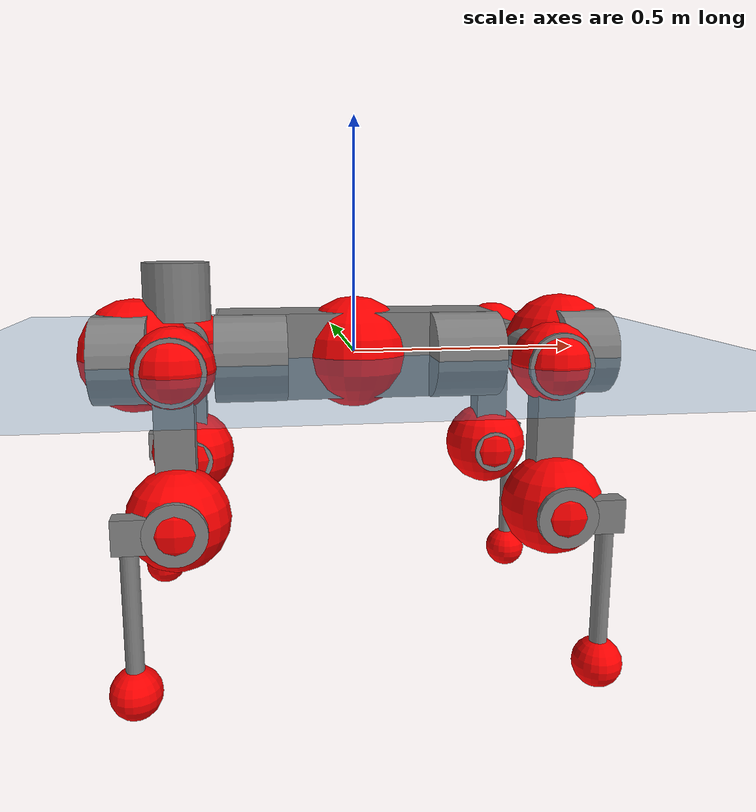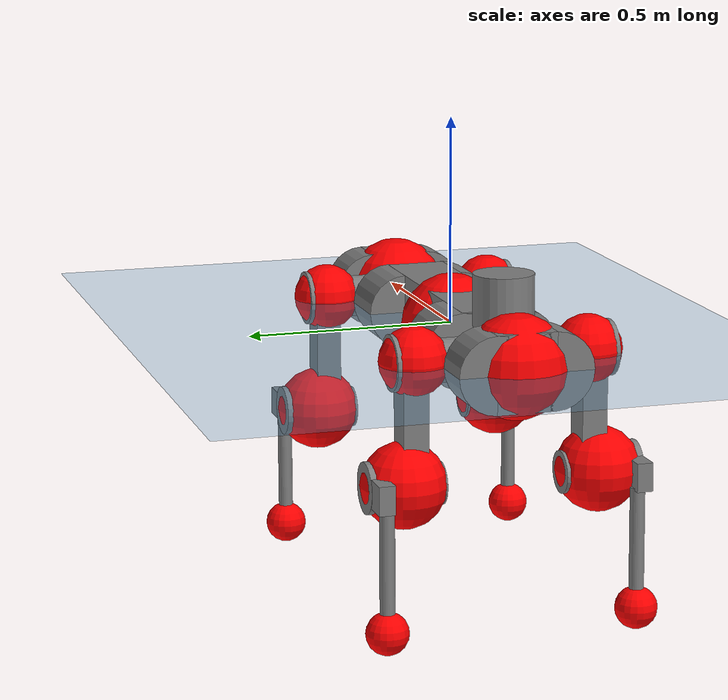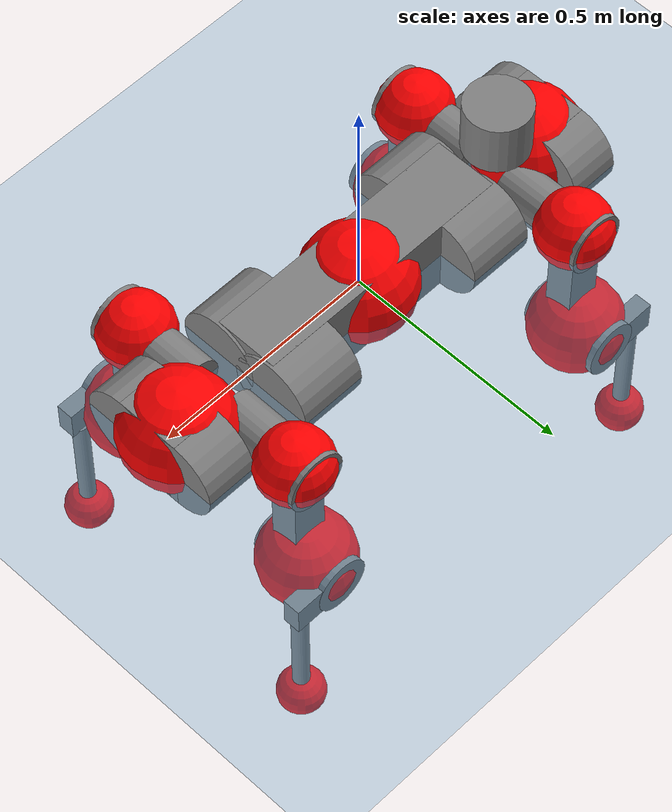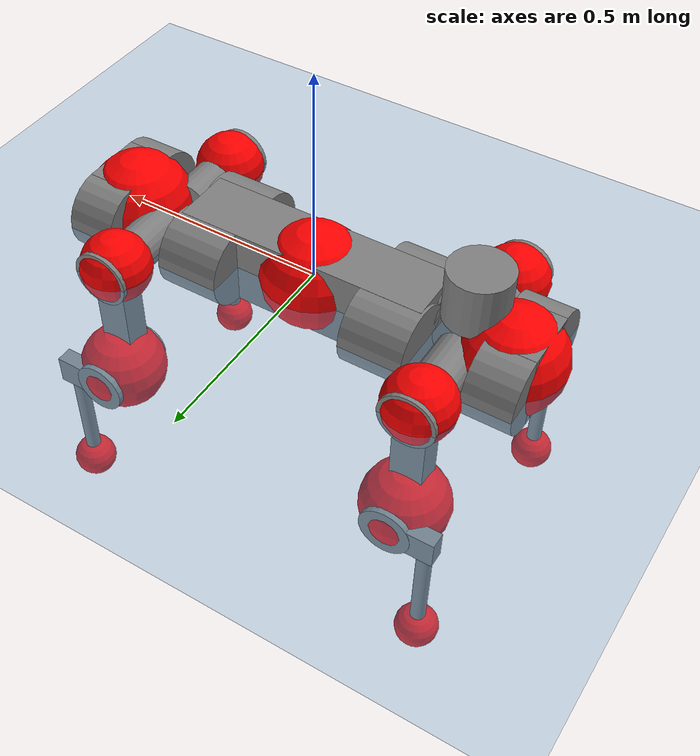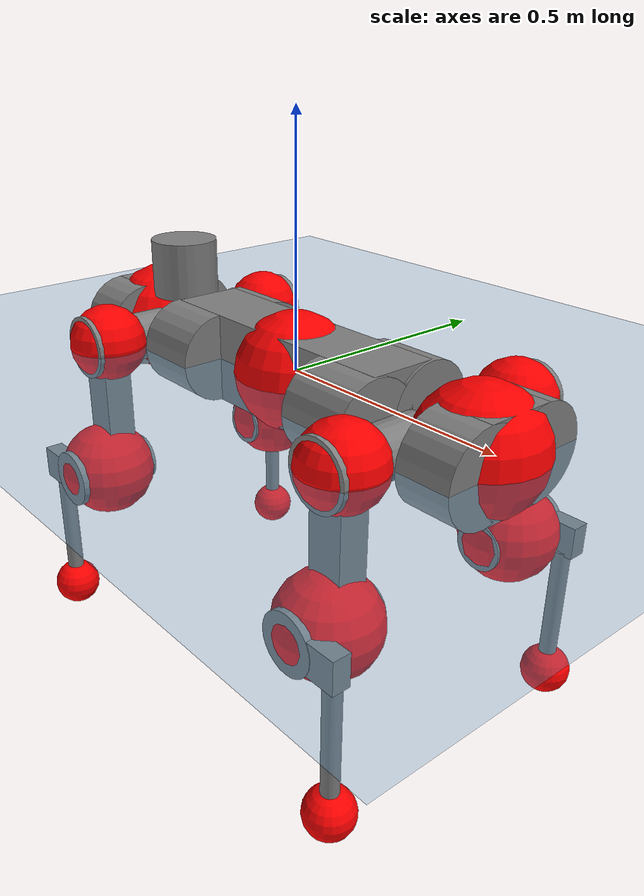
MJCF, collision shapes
<mujoco model="anymal_c">
  <compiler angle="radian" assetdir="assets" balanceinertia="true" inertiafromgeom="false"/>

  <option timestep="0.005" density="1.2" viscosity="2e-05"/>

  <size nkey="1"/>

  <visual>
    <quality shadowsize="8192"/>
    <map shadowclip="0.5"/>
  </visual>

  <default>
    <default class="/">
      <material specular="0" shininess="0.25"/>
      <geom contype="0" conaffinity="0" group="1" solref="-1000 -80"/>
      <site size="0.01 0.005 0.005" group="5"/>
      <general forcelimited="true" forcerange="-80 80" biastype="affine" gainprm="80" biasprm="0 -80 -2"/>
      <default class="anymal_c">
        <joint armature="0.01" damping="0.01" frictionloss="0.1"/>
        <default class="visual">
          <geom type="mesh" group="2"/>
          <default class="visual_zflip"/>
        </default>
        <default class="collision">
          <geom type="cylinder" group="3"/>
          <default class="foot">
            <geom size="0.03 0 0" type="sphere" condim="6" priority="1" friction="0.8 0.02 0.01" solimp="0.015 1 0.03"/>
          </default>
        </default>
      </default>
      <default class="reward_collision_sphere">
        <geom group="5" rgba="1 0 0 1"/>
      </default>
    </default>
  </default>

  <asset>
    <texture type="skybox" colorspace="auto" name="//unnamed_texture_0" builtin="gradient" rgb1="0.95 0.95 0.95" rgb2="0.95 0.95 0.95" width="100" height="600"/>
    <texture type="2d" colorspace="auto" name="texplane" builtin="checker" rgb1="0.345 0.575 0.748" rgb2="0.345 0.575 0.748" markrgb="1 1 1" width="512" height="512"/>
    <texture type="2d" colorspace="linear" name="base" file="base.png"/>
    <texture type="2d" colorspace="linear" name="top_shell" file="top_shell.png"/>
    <texture type="2d" colorspace="linear" name="bottom_shell" file="bottom_shell.png"/>
    <texture type="2d" colorspace="linear" name="remote" file="remote.png"/>
    <texture type="2d" colorspace="linear" name="hatch" file="hatch.png"/>
    <texture type="2d" colorspace="linear" name="handle" file="handle.png"/>
    <texture type="2d" colorspace="linear" name="face" file="face.png"/>
    <texture type="2d" colorspace="linear" name="battery" file="battery.png"/>
    <texture type="2d" colorspace="linear" name="lidar_cage" file="lidar_cage.png"/>
    <texture type="2d" colorspace="linear" name="depth_camera" file="depth_camera.png"/>
    <texture type="2d" colorspace="linear" name="wide_angle_camera" file="wide_angle_camera.png"/>
    <texture type="2d" colorspace="linear" name="lidar" file="lidar.png"/>
    <texture type="2d" colorspace="linear" name="drive" file="drive.png"/>
    <texture type="2d" colorspace="linear" name="hip_l" file="hip_l.png"/>
    <texture type="2d" colorspace="linear" name="shank_l" file="shank_l.png"/>
    <texture type="2d" colorspace="linear" name="foot" file="foot.png"/>
    <texture type="2d" colorspace="linear" name="thigh" file="thigh.png"/>
    <texture type="2d" colorspace="linear" name="shank_r" file="shank_r.png"/>
    <texture type="2d" colorspace="linear" name="hip_r" file="hip_r.png"/>
    <material name="MatPlane" class="/" texture="texplane" texuniform="true" texrepeat="2 2" specular="0.9" shininess="0.5"/>
    <material name="black_plastic" class="/" rgba="0.007 0.007 0.007 1"/>
    <material name="green" class="/" rgba="0.052 0.178 0.033 1"/>
    <material name="red" class="/" rgba="0.178 0.006 0.005 1"/>
    <material name="yellow" class="/" rgba="0.178 0.119 0.006 1"/>
    <material name="lwl" class="/" rgba="0.8 0.8 0.8 1"/>
    <material name="base" class="/" texture="base"/>
    <material name="top_shell" class="/" texture="top_shell"/>
    <material name="bottom_shell" class="/" texture="bottom_shell"/>
    <material name="hip_l" class="/" texture="hip_l"/>
    <material name="thigh" class="/" texture="thigh"/>
    <material name="shank_l" class="/" texture="shank_l"/>
    <material name="foot" class="/" texture="foot"/>
    <material name="hip_r" class="/" texture="hip_r"/>
    <material name="shank" class="/" texture="shank_r"/>
    <material name="hatch" class="/" texture="hatch"/>
    <material name="remote" class="/" texture="remote"/>
    <material name="handle" class="/" texture="handle"/>
    <material name="face" class="/" texture="face"/>
    <material name="depth_camera" class="/" texture="depth_camera"/>
    <material name="wide_angle_camera" class="/" texture="wide_angle_camera"/>
    <material name="battery" class="/" texture="battery"/>
    <material name="lidar_cage" class="/" texture="lidar_cage"/>
    <material name="lidar" class="/" texture="lidar"/>
    <material name="drive" class="/" texture="drive"/>
    <mesh name="base_0" class="/" file="base_0.obj"/>
    <mesh name="base_1" class="/" file="base_1.obj"/>
    <mesh name="base_2" class="/" file="base_2.obj"/>
    <mesh name="base_3" class="/" file="base_3.obj"/>
    <mesh name="base_4" class="/" file="base_4.obj"/>
    <mesh name="base_5" class="/" file="base_5.obj"/>
    <mesh name="top_shell" class="/" file="top_shell.obj"/>
    <mesh name="bottom_shell" class="/" file="bottom_shell.obj"/>
    <mesh name="remote" class="/" file="remote.obj"/>
    <mesh name="handle" class="/" file="handle.obj"/>
    <mesh name="face" class="/" file="face.obj"/>
    <mesh name="wide_angle_camera" class="/" file="wide_angle_camera.obj"/>
    <mesh name="depth_camera" class="/" file="depth_camera.obj"/>
    <mesh name="battery" class="/" file="battery.obj"/>
    <mesh name="lidar_cage" class="/" file="lidar_cage.obj"/>
    <mesh name="lidar" class="/" file="lidar.obj"/>
    <mesh name="drive" class="/" file="drive.obj"/>
    <mesh name="hip_l" class="/" file="hip_l.obj"/>
    <mesh name="thigh" class="/" file="thigh.obj"/>
    <mesh name="shank_l" class="/" file="shank_l.obj"/>
    <mesh name="foot" class="/" file="foot.obj"/>
    <mesh name="hip_r" class="/" file="hip_r.obj"/>
    <mesh name="hatch" class="/" file="hatch.obj"/>
    <mesh name="shank_r" class="/" file="shank_r.obj"/>
  </asset>

  <worldbody>
    <geom name="floor" class="/" size="100 100 0.125" type="plane" group="0" material="MatPlane"/>
    <light name="toplight_shadow" class="/" pos="0 0 5" dir="0.0990148 0.0990148 -0.990148" type="directional" ambient="0.04 0.04 0.04" diffuse="0.55 0.55 0.55" specular="0.12 0.12 0.12"/>
    <light name="toplight_fill" class="/" pos="0 0 5" dir="0.0990148 0.0990148 -0.990148" type="directional" castshadow="false" ambient="0.04 0.04 0.04" diffuse="0.3 0.3 0.3" specular="0.08 0.08 0.08"/>
    <body name="trunk" childclass="anymal_c" pos="-0.000442841 -0.00275119 -0.000560648" quat="0.999999 -0.00123979 0.000149449 0.00058774">
      <inertial pos="-0.000111402 -0.00187318 0.0526426" quat="0.492079 0.496675 0.506887 0.50422" mass="20.3618" diaginertia="0.764221 0.573213 0.24269"/>
      <joint name="//unnamed_joint_0" type="free" armature="0" damping="0" frictionloss="0"/>
      <geom name="//unnamed_geom_1" class="visual" material="green" mesh="base_0"/>
      <geom name="//unnamed_geom_2" class="visual" material="yellow" mesh="base_1"/>
      <geom name="//unnamed_geom_3" class="visual" material="red" mesh="base_2"/>
      <geom name="//unnamed_geom_4" class="visual" material="black_plastic" mesh="base_3"/>
      <geom name="//unnamed_geom_5" class="visual" material="lwl" mesh="base_4"/>
      <geom name="//unnamed_geom_6" class="visual" material="base" mesh="base_5"/>
      <geom name="trunk_1" class="collision" size="0.294697 0.0711337 0.0914576" type="box"/>
      <geom name="trunk_2" class="collision" size="0.0914576 0.0736742" pos="0.227372 0.0688474 0" quat="0.707107 0 0.707107 0"/>
      <geom name="trunk_3" class="collision" size="0.0914576 0.0736742" pos="-0.227372 0.0688474 0" quat="0.707107 0 0.707107 0"/>
      <geom name="trunk_4" class="collision" size="0.0914576 0.0736742" pos="0.227372 -0.0688474 0" quat="0.707107 0 0.707107 0"/>
      <geom name="trunk_5" class="collision" size="0.0914576 0.0736742" pos="-0.227372 -0.0688474 0" quat="0.707107 0 0.707107 0"/>
      <geom name="//unnamed_geom_12" class="visual" material="top_shell" mesh="top_shell"/>
      <geom name="//unnamed_geom_13" class="visual" material="bottom_shell" mesh="bottom_shell"/>
      <geom name="//unnamed_geom_14" class="visual" material="remote" mesh="remote"/>
      <geom name="//unnamed_geom_15" class="visual" material="handle" mesh="handle"/>
      <geom name="//unnamed_geom_16" class="visual" pos="0.433314 0 0" quat="1 0 0 0" material="face" mesh="face"/>
      <geom name="trunk_6" class="collision" size="0.0558908 0.0711337 0.0914576" pos="0.49081 0 0" type="box"/>
      <geom name="//unnamed_geom_18" class="collision" size="0.0914576 0.0558908" pos="0.49081 0.0688474 0" quat="0.707107 0 0.707107 0"/>
      <geom name="//unnamed_geom_19" class="collision" size="0.0914576 0.0558908" pos="0.49081 -0.0688474 0" quat="0.707107 0 0.707107 0"/>
      <geom name="//unnamed_geom_20" class="visual" pos="0.482603 0 -0.0295786" quat="0.965926 0 0.258819 0" material="depth_camera" mesh="depth_camera"/>
      <geom name="//unnamed_geom_21" class="visual" pos="0.536284 0 0.0152644" material="wide_angle_camera" mesh="wide_angle_camera"/>
      <geom name="//unnamed_geom_22" class="visual_zflip" pos="-0.433314 0 0" quat="0 0 0 1" material="face" mesh="face"/>
      <geom name="trunk_7" class="collision" size="0.0558908 0.0711337 0.0914576" pos="-0.49081 0 0" quat="0 0 0 1" type="box"/>
      <geom name="//unnamed_geom_24" class="collision" size="0.0914576 0.0558908" pos="-0.49081 -0.0688474 0" quat="0 -0.707107 0 0.707107"/>
      <geom name="//unnamed_geom_25" class="collision" size="0.0914576 0.0558908" pos="-0.49081 0.0688474 0" quat="0 -0.707107 0 0.707107"/>
      <geom name="//unnamed_geom_26" class="visual" pos="-0.482603 0 -0.0295786" quat="0 -0.258819 0 0.965926" material="depth_camera" mesh="depth_camera"/>
      <geom name="//unnamed_geom_27" class="visual_zflip" pos="-0.536284 0 0.0152644" quat="0 0 0 1" material="wide_angle_camera" mesh="wide_angle_camera"/>
      <geom name="//unnamed_geom_28" class="visual" material="battery" mesh="battery"/>
      <geom name="//unnamed_geom_29" class="visual" pos="0 0.0743884 0.0298167" quat="0.683013 -0.183013 0.183013 0.683013" material="depth_camera" mesh="depth_camera"/>
      <geom name="//unnamed_geom_30" class="visual" pos="0 -0.0743884 0.0298167" quat="0.683013 0.183013 0.183013 -0.683013" material="depth_camera" mesh="depth_camera"/>
      <geom name="//unnamed_geom_31" class="visual" pos="-0.380522 0 0.0749452" quat="1 0 0 0" material="lidar_cage" mesh="lidar_cage"/>
      <geom name="trunk_8" class="collision" size="0.0711337 0.0609717" pos="-0.380522 0 0.136125"/>
      <geom name="//unnamed_geom_33" class="visual" pos="-0.380522 -2.43007e-05 0.144996" quat="0.707107 0 0 -0.707107" material="lidar" mesh="lidar"/>
      <geom name="//unnamed_geom_34" class="visual" pos="0.313512 0.1023 -6.23207e-10" quat="0.258819 0.965926 0 0" material="drive" mesh="drive"/>
      <geom name="//unnamed_geom_35" class="visual" pos="0.313512 -0.1023 6.23207e-10" quat="0.258819 -0.965926 0 0" material="drive" mesh="drive"/>
      <geom name="//unnamed_geom_36" class="visual" pos="-0.313512 0.1023 6.23207e-10" quat="0 0 0.965926 -0.258819" material="drive" mesh="drive"/>
      <geom name="//unnamed_geom_37" class="visual" pos="-0.313512 -0.1023 -6.23207e-10" quat="0 0 -0.965926 -0.258819" material="drive" mesh="drive"/>
      <geom name="//unnamed_geom_38" class="visual" pos="0.121265 0 0.0744354" quat="1 0 0 0" material="hatch" mesh="hatch"/>
      <geom name="//unnamed_geom_39" class="reward_collision_sphere" size="0.121943"/>
      <geom name="//unnamed_geom_40" class="reward_collision_sphere" size="0.121943" pos="0.470425 0 0"/>
      <geom name="//unnamed_geom_41" class="reward_collision_sphere" size="0.121943" pos="-0.470425 0 0"/>
      <site name="imu" pos="0.265265 0.00516523 0.044218" size="0.010162"/>
      <camera name="track" pos="0 -1.96707 0" quat="0.707107 0.707107 0 0" mode="trackcom"/>
      <camera name="ego_camera" pos="0.470425 0 -0.0407865" quat="-0.5 -0.5 0.5 0.5"/>
      <body name="LF_HIP" pos="0.312666 0.102688 0.001034" quat="0.258565 0.965994 -0.000381283 7.01458e-06">
        <inertial pos="0.0591494 -0.0175663 -0.00804883" quat="-0.132243 0.706111 -0.13754 0.681911" mass="2.90429" diaginertia="0.00733074 0.00439115 0.00362217"/>
        <joint name="LF_HAA" pos="0 0 0" axis="0.999958 0.00732814 -0.0055932" stiffness="0.00627303" range="-0.763105 0.504966" armature="0.0103099" damping="0.0081053" frictionloss="0.0988245"/>
        <geom name="//unnamed_geom_42" class="visual" pos="0 -3.66604e-05 6.02145e-06" quat="0.258819 -0.965926 0 0" material="hip_l" mesh="hip_l"/>
        <geom name="//unnamed_geom_43" class="visual" pos="0.0626188 -0.0750744 -0.0436115" quat="0.183013 -0.683013 0.683013 0.183013" material="drive" mesh="drive"/>
        <geom name="//unnamed_geom_44" class="collision" size="0.0508098 0.0711337" pos="0.0626188 -0.0117629 -0.00704077" quat="-0.353553 -0.612372 0.612372 -0.353553"/>
        <body name="LF_THIGH" pos="0.0656462 -0.0694138 -0.0420735" quat="0.183635 -0.683083 0.682664 0.183428">
          <inertial pos="0.0318952 0.00176823 -0.249565" quat="0.993321 -0.0110412 -0.0818803 0.0805386" mass="3.33442" diaginertia="0.0367956 0.0283797 0.00462998"/>
          <joint name="LF_HFE" pos="0 0 0" axis="0.999896 0.0132759 0.00556505" stiffness="0.00909146" range="-3.20011 3.09274" armature="0.0110561" damping="0.00238709" frictionloss="0.0895216"/>
          <geom name="//unnamed_geom_45" class="visual" pos="0.00123065 1.93921e-06 0" quat="0.707107 0 0 -0.707107" material="thigh" mesh="thigh"/>
          <geom name="//unnamed_geom_46" class="collision" size="0.0660527 0.0406478" pos="0.0418155 0 0" quat="0.5 0.5 -0.5 -0.5"/>
          <geom name="//unnamed_geom_47" class="collision" size="0.0381073 0.0304859 0.143603" pos="0.0313617 0 -0.144093" quat="0.707107 0 0 -0.707107" type="box"/>
          <geom name="//unnamed_geom_48" class="visual" pos="0.104852 0 -0.290604" quat="1 0 0 0" material="drive" mesh="drive"/>
          <geom name="//unnamed_geom_49" class="collision" size="0.0508098 0.0711337" pos="0.0316753 0 -0.290604" quat="0.707107 0 0.707107 0"/>
          <geom name="//unnamed_geom_50" class="reward_collision_sphere" size="0.0812956" pos="0.0261347 0 0"/>
          <body name="LF_SHANK" pos="0.104392 -0.000592449 -0.288737" quat="1 2.8804e-05 0.000196919 0.000509014">
            <inertial pos="0.00316295 -0.0628194 -0.0850669" quat="0.992413 -0.119428 -0.000441573 -0.0291932" mass="0.603483" diaginertia="0.0122301 0.00845802 0.00120803"/>
            <joint name="LF_KFE" pos="0 0 0" axis="0.999997 -0.00067774 0.00253224" stiffness="0.00624891" range="-3.1057 3.19595" armature="0.00888145" damping="0" frictionloss="0.105355"/>
            <geom name="//unnamed_geom_51" class="visual" pos="0.000401287 0.00213968 0" quat="0.707107 0 0 -0.707107" material="shank_l" mesh="shank_l"/>
            <geom name="LF_kfe_act" class="collision" size="0.0609717 0.0203239" pos="0.0209078 0 0" quat="0.5 0.5 -0.5 -0.5"/>
            <geom name="//unnamed_geom_53" class="collision" size="0.0584302 0.0342966 0.0193077" pos="0.0209078 -0.0565523 0" quat="0.5 0.5 -0.5 -0.5" type="box"/>
            <geom name="//unnamed_geom_54" class="visual" pos="0.0136422 -0.0858124 -0.344615" quat="0.382683 0 0 -0.92388" material="foot" mesh="foot"/>
            <geom name="LF_calf" class="collision" size="0.0177834 0.14354" pos="0.0136423 -0.0865019 -0.172308" quat="0.707107 0 0 -0.707107"/>
            <geom name="LF_foot" class="foot" size="0.0292487" pos="0.0136423 -0.0865019 -0.321673" quat="0.707107 0 0 -0.707107"/>
            <geom name="//unnamed_geom_57" class="reward_collision_sphere" size="0.10162" pos="-0.0522694 0 0"/>
            <geom name="//unnamed_geom_58" class="reward_collision_sphere" size="0.0508098" pos="0.0136423 -0.0865019 -0.321673"/>
            <site name="LF_foot" class="foot" pos="0.0136423 -0.0865019 -0.321673" quat="0.707107 0 0 -0.707107" size="0.010162"/>
          </body>
        </body>
      </body>
      <body name="RF_HIP" pos="0.311965 -0.104801 -0.000334218" quat="0.258843 -0.96592 -2.40155e-05 -0.0001187">
        <inertial pos="0.0603978 0.017016 -0.0102076" quat="0.146212 0.681873 0.126926 0.70538" mass="2.88515" diaginertia="0.00708992 0.00453361 0.00368657"/>
        <joint name="RF_HAA" pos="0 0 0" axis="0.999899 0.00301352 0.0138803" range="-0.510925 0.775031" armature="0.00925642" damping="0.0024567" frictionloss="0.103064"/>
        <geom name="//unnamed_geom_59" class="visual" pos="0 3.66602e-05 6.02143e-06" quat="0.258819 0.965926 0 0" material="hip_r" mesh="hip_r"/>
        <geom name="//unnamed_geom_60" class="visual" pos="0.0626188 0.0750744 -0.0436115" quat="0.183013 0.683013 0.683013 -0.183013" material="drive" mesh="drive"/>
        <geom name="//unnamed_geom_61" class="collision" size="0.0508098 0.0711337" pos="0.0626188 0.0117629 -0.00704077" quat="-0.353553 0.612372 0.612372 0.353553"/>
        <body name="RF_THIGH" pos="0.0615312 0.0712023 -0.0443401" quat="0.182901 0.682964 0.683113 -0.182932">
          <inertial pos="0.034468 -0.00280595 -0.248109" quat="0.992316 -0.0035635 -0.0853237 0.0895338" mass="3.2479" diaginertia="0.0365966 0.0275637 0.00462143"/>
          <joint name="RF_HFE" pos="0 0 0" axis="0.999959 9.08783e-05 0.0090176" stiffness="0.00690446" range="-3.14638 3.15875" armature="0.00899207" damping="0.0236031" frictionloss="0.0882644"/>
          <geom name="//unnamed_geom_62" class="visual" pos="0.00123065 1.93921e-06 0" quat="0.707107 0 0 -0.707107" material="thigh" mesh="thigh"/>
          <geom name="//unnamed_geom_63" class="collision" size="0.0660527 0.0406478" pos="0.0418155 0 0" quat="0.5 0.5 0.5 0.5"/>
          <geom name="//unnamed_geom_64" class="collision" size="0.0381073 0.0304859 0.143603" pos="0.0313617 0 -0.144093" quat="0.707107 0 0 0.707107" type="box"/>
          <geom name="//unnamed_geom_65" class="visual" pos="0.104852 0 -0.290604" quat="1 0 0 0" material="drive" mesh="drive"/>
          <geom name="//unnamed_geom_66" class="collision" size="0.0508098 0.0711337" pos="0.0316753 0 -0.290604" quat="0.707107 0 0.707107 0"/>
          <geom name="//unnamed_geom_67" class="reward_collision_sphere" size="0.0812956" pos="0.0261347 0 0"/>
          <body name="RF_SHANK" pos="0.10422 0.002335 -0.289295" quat="1 -6.02435e-06 -0.000187515 0.000158253">
            <inertial pos="0.00327312 0.0629882 -0.0824965" quat="0.992866 0.115316 -0.00785595 0.0292678" mass="0.631451" diaginertia="0.012759 0.00899626 0.00122044"/>
            <joint name="RF_KFE" pos="0 0 0" axis="0.999993 -0.00125599 0.00360631" stiffness="3.28455e-05" range="-3.10756 3.13887" armature="0.0106439" damping="0" frictionloss="0.0958965"/>
            <geom name="//unnamed_geom_68" class="visual" pos="0.000401285 -0.00213968 0" quat="0.707107 0 0 0.707107" material="shank" mesh="shank_r"/>
            <geom name="RF_kfe_act" class="collision" size="0.0609717 0.0203239" pos="0.0209078 0 0" quat="0.5 0.5 0.5 0.5"/>
            <geom name="//unnamed_geom_70" class="collision" size="0.0584302 0.0342966 0.0193077" pos="0.0209078 0.0565523 0" quat="0.5 0.5 0.5 0.5" type="box"/>
            <geom name="//unnamed_geom_71" class="visual" pos="0.0136424 0.0858124 -0.344615" quat="0.382683 0 0 0.92388" material="foot" mesh="foot"/>
            <geom name="RF_calf" class="collision" size="0.0177834 0.14354" pos="0.0136423 0.0865019 -0.172308" quat="0.707107 0 0 0.707107"/>
            <geom name="RF_foot" class="foot" size="0.0291894" pos="0.0136423 0.0865019 -0.321673" quat="0.707107 0 0 0.707107"/>
            <geom name="//unnamed_geom_74" class="reward_collision_sphere" size="0.10162" pos="-0.0522694 0 0"/>
            <geom name="//unnamed_geom_75" class="reward_collision_sphere" size="0.0508098" pos="0.0136423 0.0865019 -0.321673"/>
            <site name="RF_foot" class="foot" pos="0.0136423 0.0865019 -0.321673" quat="0.707107 0 0 0.707107" size="0.010162"/>
          </body>
        </body>
      </body>
      <body name="LH_HIP" pos="-0.313126 0.10497 0.00350958" quat="0.000369585 -0.000228279 0.965973 -0.258644">
        <inertial pos="0.0587749 0.0151191 -0.00599718" quat="0.135852 0.679046 0.129118 0.709767" mass="2.81113" diaginertia="0.00724997 0.0043366 0.0036752"/>
        <joint name="LH_HAA" pos="0 0 0" axis="0.999988 0.00484701 -0.000110297" stiffness="0.00870978" range="-0.439088 0.705299" armature="0.0103558" damping="0.0109869" frictionloss="0.116031"/>
        <geom name="//unnamed_geom_76" class="visual" pos="0 3.66602e-05 6.02143e-06" quat="-0.258819 -0.965926 0 0" material="hip_r" mesh="hip_r"/>
        <geom name="//unnamed_geom_77" class="visual" pos="0.0626188 0.0750744 -0.0436115" quat="0.183013 0.683013 0.683013 -0.183013" material="drive" mesh="drive"/>
        <geom name="//unnamed_geom_78" class="collision" size="0.0508098 0.0711337" pos="0.0626188 0.0117629 -0.00704077" quat="-0.353553 0.612372 0.612372 0.353553"/>
        <body name="LH_THIGH" pos="0.0620418 0.0697207 -0.0426154" quat="0.183819 0.683256 0.682774 -0.182187">
          <inertial pos="0.0320353 0.00136266 -0.249351" quat="0.991503 0.000750803 -0.0814182 0.101451" mass="3.14947" diaginertia="0.03673 0.0284083 0.00476889"/>
          <joint name="LH_HFE" pos="0 0 0" axis="0.99997 -0.000724208 0.00773311" stiffness="0.000134507" range="-3.12085 3.1474" armature="0.0115411" damping="0.0242479" frictionloss="0.0893956"/>
          <geom name="//unnamed_geom_79" class="visual" pos="0.00123065 1.93921e-06 0" quat="0.707107 0 0 -0.707107" material="thigh" mesh="thigh"/>
          <geom name="//unnamed_geom_80" class="collision" size="0.0660527 0.0406478" pos="0.0418155 0 0" quat="0.5 0.5 -0.5 -0.5"/>
          <geom name="//unnamed_geom_81" class="collision" size="0.0381073 0.0304859 0.143603" pos="0.0313617 0 -0.144093" quat="0.707107 0 0 -0.707107" type="box"/>
          <geom name="//unnamed_geom_82" class="visual" pos="0.104852 0 -0.290604" quat="1 0 0 0" material="drive" mesh="drive"/>
          <geom name="//unnamed_geom_83" class="collision" size="0.0508098 0.0711337" pos="0.0316753 0 -0.290604" quat="0.707107 0 0.707107 0"/>
          <geom name="//unnamed_geom_84" class="reward_collision_sphere" size="0.0812956" pos="0.0261347 0 0"/>
          <body name="LH_SHANK" pos="0.103497 0.00149081 -0.287986" quat="1 0.000162751 -0.000915839 4.25307e-07">
            <inertial pos="0.00616538 0.0629146 -0.0811434" quat="0.992771 0.117784 0.00104722 0.0230644" mass="0.606587" diaginertia="0.0121047 0.00810949 0.00117686"/>
            <joint name="LH_KFE" pos="0 0 0" axis="0.999984 -0.00374198 0.00431958" stiffness="0.008764" range="-3.10373 3.14747" armature="0.0110264" damping="0.0218148" frictionloss="0.0879546"/>
            <geom name="//unnamed_geom_85" class="visual" pos="0.000401285 -0.00213968 0" quat="-0.707107 0 0 -0.707107" material="shank" mesh="shank_r"/>
            <geom name="LH_kfe_act" class="collision" size="0.0609717 0.0203239" pos="0.0209078 0 0" quat="0.5 0.5 -0.5 -0.5"/>
            <geom name="//unnamed_geom_87" class="collision" size="0.0584302 0.0342966 0.0193077" pos="0.0209078 0.0565523 0" quat="0.5 0.5 -0.5 -0.5" type="box"/>
            <geom name="//unnamed_geom_88" class="visual" pos="0.0136424 0.0858124 -0.344615" quat="-0.382683 0 0 -0.92388" material="foot" mesh="foot"/>
            <geom name="LH_calf" class="collision" size="0.0177834 0.14354" pos="0.0136423 0.0865019 -0.172308" quat="0.707107 0 0 -0.707107"/>
            <geom name="LH_foot" class="foot" size="0.0303328" pos="0.0136423 0.0865019 -0.321673" quat="0.707107 0 0 -0.707107"/>
            <geom name="//unnamed_geom_91" class="reward_collision_sphere" size="0.10162" pos="-0.0522694 0 0"/>
            <geom name="//unnamed_geom_92" class="reward_collision_sphere" size="0.0508098" pos="0.0136423 0.0865019 -0.321673"/>
            <site name="LH_foot" class="foot" pos="0.0136423 0.0865019 -0.321673" quat="0.707107 0 0 -0.707107" size="0.010162"/>
          </body>
        </body>
      </body>
      <body name="RH_HIP" pos="-0.315248 -0.101025 0.00153001" quat="0.000515168 0.000644352 -0.965964 -0.258675">
        <inertial pos="0.0586708 -0.0156565 -0.00759481" quat="-0.129463 0.711196 -0.134634 0.677726" mass="2.84998" diaginertia="0.0071379 0.00443689 0.00359211"/>
        <joint name="RH_HAA" pos="0 0 0" axis="0.999992 -0.00285631 0.0029727" stiffness="0.00926149" range="-0.713558 0.54841" armature="0.0113889" damping="0.013566" frictionloss="0.114894"/>
        <geom name="//unnamed_geom_93" class="visual" pos="0 -3.66604e-05 6.02145e-06" quat="-0.258819 0.965926 0 0" material="hip_l" mesh="hip_l"/>
        <geom name="//unnamed_geom_94" class="visual" pos="0.0626188 -0.0750744 -0.0436115" quat="-0.183013 0.683013 -0.683013 -0.183013" material="drive" mesh="drive"/>
        <geom name="//unnamed_geom_95" class="collision" size="0.0508098 0.0711337" pos="0.0626188 -0.0117629 -0.00704077" quat="0.353553 0.612372 -0.612372 0.353553"/>
        <body name="RH_THIGH" pos="0.0596741 -0.0680085 -0.0432659" quat="-0.18352 0.68283 -0.682981 -0.183307">
          <inertial pos="0.0329658 -0.00289262 -0.24962" quat="0.992984 -0.00976255 -0.0819394 0.0846986" mass="3.22926" diaginertia="0.0381342 0.0273011 0.00444001"/>
          <joint name="RH_HFE" pos="0 0 0" axis="0.999982 -0.00168145 0.0057032" stiffness="0.0107828" range="-3.15615 3.17339" armature="0.00916211" damping="0.0216345" frictionloss="0.105776"/>
          <geom name="//unnamed_geom_96" class="visual" pos="0.00123065 1.93921e-06 0" quat="0.707107 0 0 -0.707107" material="thigh" mesh="thigh"/>
          <geom name="//unnamed_geom_97" class="collision" size="0.0660527 0.0406478" pos="0.0418155 0 0" quat="0.5 0.5 0.5 0.5"/>
          <geom name="//unnamed_geom_98" class="collision" size="0.0381073 0.0304859 0.143603" pos="0.0313617 0 -0.144093" quat="0.707107 0 0 0.707107" type="box"/>
          <geom name="//unnamed_geom_99" class="visual" pos="0.104852 0 -0.290604" quat="1 0 0 0" material="drive" mesh="drive"/>
          <geom name="//unnamed_geom_100" class="collision" size="0.0508098 0.0711337" pos="0.0316753 0 -0.290604" quat="0.707107 0 0.707107 0"/>
          <geom name="//unnamed_geom_101" class="reward_collision_sphere" size="0.0812956" pos="0.0261347 0 0"/>
          <body name="RH_SHANK" pos="0.106853 0.00131537 -0.289209" quat="1 -0.000150929 -0.000136429 -4.00025e-05">
            <inertial pos="0.00336921 -0.0610556 -0.0827792" quat="0.992961 -0.11596 -0.000175774 -0.0241067" mass="0.636079" diaginertia="0.0126877 0.00868441 0.0012443"/>
            <joint name="RH_KFE" pos="0 0 0" axis="0.999961 0.000900269 0.00875159" range="-3.0822 3.17452" armature="0.0106121" damping="0.0143385" frictionloss="0.113627"/>
            <geom name="//unnamed_geom_102" class="visual" pos="0.000401287 0.00213968 0" quat="0.707107 0 0 -0.707107" material="shank_l" mesh="shank_l"/>
            <geom name="RH_kfe_act" class="collision" size="0.0609717 0.0203239" pos="0.0209078 0 0" quat="0.5 0.5 0.5 0.5"/>
            <geom name="//unnamed_geom_104" class="collision" size="0.0584302 0.0342966 0.0193077" pos="0.0209078 -0.0565523 0" quat="0.5 0.5 0.5 0.5" type="box"/>
            <geom name="//unnamed_geom_105" class="visual" pos="0.0136422 -0.0858124 -0.344615" quat="0.382683 0 0 -0.92388" material="foot" mesh="foot"/>
            <geom name="RH_calf" class="collision" size="0.0177834 0.14354" pos="0.0136423 -0.0865019 -0.172308" quat="0.707107 0 0 0.707107"/>
            <geom name="RH_foot" class="foot" size="0.0313725" pos="0.0136423 -0.0865019 -0.321673" quat="0.707107 0 0 0.707107"/>
            <geom name="//unnamed_geom_108" class="reward_collision_sphere" size="0.10162" pos="-0.0522694 0 0"/>
            <geom name="//unnamed_geom_109" class="reward_collision_sphere" size="0.0508098" pos="0.0136423 -0.0865019 -0.321673"/>
            <site name="RH_foot" class="foot" pos="0.0136423 -0.0865019 -0.321673" quat="0.707107 0 0 0.707107" size="0.010162"/>
          </body>
        </body>
      </body>
    </body>
  </worldbody>

  <contact>
    <pair class="/" geom1="floor" geom2="LF_foot" name="//unnamed_contact_0"/>
    <pair class="/" geom1="floor" geom2="RF_foot" name="//unnamed_contact_1"/>
    <pair class="/" geom1="floor" geom2="LH_foot" name="//unnamed_contact_2"/>
    <pair class="/" geom1="floor" geom2="RH_foot" name="//unnamed_contact_3"/>
  </contact>

  <actuator>
    <general name="LF_HAA" class="/" joint="LF_HAA" forcerange="-88.8868 88.8868" gainprm="81.4523" biasprm="0 -81.4523 -2.14996"/>
    <general name="LF_HFE" class="/" joint="LF_HFE" forcerange="-81.6483 81.6483" gainprm="81.4523" biasprm="0 -81.4523 -2.14996"/>
    <general name="LF_KFE" class="/" joint="LF_KFE" forcerange="-78.3566 78.3566" gainprm="81.4523" biasprm="0 -81.4523 -2.14996"/>
    <general name="RF_HAA" class="/" joint="RF_HAA" forcerange="-75.4365 75.4365" gainprm="81.4523" biasprm="0 -81.4523 -2.14996"/>
    <general name="RF_HFE" class="/" joint="RF_HFE" forcerange="-81.6864 81.6864" gainprm="81.4523" biasprm="0 -81.4523 -2.14996"/>
    <general name="RF_KFE" class="/" joint="RF_KFE" forcerange="-72.8831 72.8831" gainprm="81.4523" biasprm="0 -81.4523 -2.14996"/>
    <general name="LH_HAA" class="/" joint="LH_HAA" forcerange="-80.9851 80.9851" gainprm="81.4523" biasprm="0 -81.4523 -2.14996"/>
    <general name="LH_HFE" class="/" joint="LH_HFE" forcerange="-81.8139 81.8139" gainprm="81.4523" biasprm="0 -81.4523 -2.14996"/>
    <general name="LH_KFE" class="/" joint="LH_KFE" forcerange="-84.7358 84.7358" gainprm="81.4523" biasprm="0 -81.4523 -2.14996"/>
    <general name="RH_HAA" class="/" joint="RH_HAA" forcerange="-76.2862 76.2862" gainprm="81.4523" biasprm="0 -81.4523 -2.14996"/>
    <general name="RH_HFE" class="/" joint="RH_HFE" forcerange="-85.6473 85.6473" gainprm="81.4523" biasprm="0 -81.4523 -2.14996"/>
    <general name="RH_KFE" class="/" joint="RH_KFE" forcerange="-89.1472 89.1472" gainprm="81.4523" biasprm="0 -81.4523 -2.14996"/>
  </actuator>

  <sensor>
    <gyro site="imu" name="imu_angular_velocity"/>
    <velocimeter site="imu" name="imu_linear_velocity"/>
    <framelinvel objtype="site" objname="LF_foot" name="LF_foot_global_linear_velocity"/>
    <framelinvel objtype="site" objname="RF_foot" name="RF_foot_global_linear_velocity"/>
    <framelinvel objtype="site" objname="LH_foot" name="LH_foot_global_linear_velocity"/>
    <framelinvel objtype="site" objname="RH_foot" name="RH_foot_global_linear_velocity"/>
  </sensor>

  <keyframe>
    <key name="home" qpos="0 0 0.55 1 0 0 0 0 0.4 -0.8 0 -0.4 0.8 0 -0.4 0.8 0 0.4 -0.8"/>
  </keyframe>
</mujoco>
